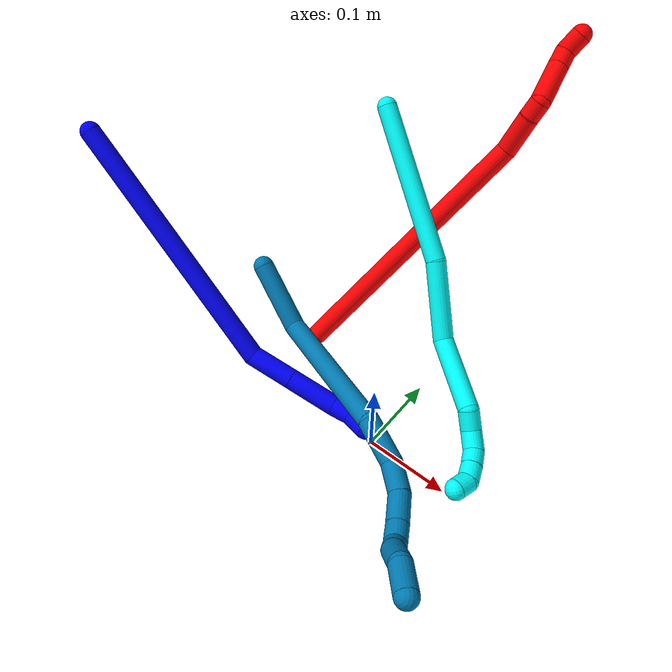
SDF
<sdf version="1.7">
 <world name="default">
  <model name="1">
   <static>0</static>
   <link name="1">
    <collision name="collision-cylinder-e_1_1_4">
     <pose>0.107874 -0.072857 -0.104615 2.53327 0.702266 1.72459</pose>
     <geometry><cylinder><radius>0.0125</radius><length>0.334</length></cylinder></geometry>
     <surface>
      <friction><ode><mu>1.16</mu><mu2>1.16</mu2><slip1>0</slip1><slip2>0</slip2></ode></friction>
      <contact><ode><kp>1e+06</kp><kd>1</kd><max_vel>0</max_vel><min_depth>0.001</min_depth></ode></contact>
     </surface>
    </collision>
    <visual name="visual-cylinder-e_1_1_4">
     <pose>0.107874 -0.072857 -0.104615 2.53327 0.702266 1.72459</pose>
     <geometry><cylinder><radius>0.0125</radius><length>0.334</length></cylinder></geometry>
     <material><ambient>0 0 1 1</ambient></material>
    </visual>
    <collision name="collision-cylinder-e_2_4_5">
     <pose>0.224241 -0.152194 -0.235324 2.89818 0.305962 1.80037</pose>
     <geometry><cylinder><radius>0.0125</radius><length>0.056395</length></cylinder></geometry>
     <surface>
      <friction><ode><mu>1.16</mu><mu2>1.16</mu2><slip1>0</slip1><slip2>0</slip2></ode></friction>
      <contact><ode><kp>1e+06</kp><kd>1</kd><max_vel>0</max_vel><min_depth>0.001</min_depth></ode></contact>
     </surface>
    </collision>
    <visual name="visual-cylinder-e_2_4_5">
     <pose>0.224241 -0.152194 -0.235324 2.89818 0.305962 1.80037</pose>
     <geometry><cylinder><radius>0.0125</radius><length>0.056395</length></cylinder></geometry>
     <material><ambient>0 0 1 1</ambient></material>
    </visual>
    <collision name="collision-cylinder-e_3_5_6">
     <pose>0.242008 -0.166194 -0.289525 2.88016 0.30858 1.73808</pose>
     <geometry><cylinder><radius>0.0125</radius><length>0.061073</length></cylinder></geometry>
     <surface>
      <friction><ode><mu>1.16</mu><mu2>1.16</mu2><slip1>0</slip1><slip2>0</slip2></ode></friction>
      <contact><ode><kp>1e+06</kp><kd>1</kd><max_vel>0</max_vel><min_depth>0.001</min_depth></ode></contact>
     </surface>
    </collision>
    <visual name="visual-cylinder-e_3_5_6">
     <pose>0.242008 -0.166194 -0.289525 2.88016 0.30858 1.73808</pose>
     <geometry><cylinder><radius>0.0125</radius><length>0.061073</length></cylinder></geometry>
     <material><ambient>0 0 1 1</ambient></material>
    </visual>
    <collision name="collision-cylinder-e_4_6_7">
     <pose>0.253886 -0.174894 -0.329008 3.03824 0.223787 2.27879</pose>
     <geometry><cylinder><radius>0.0125</radius><length>0.023461</length></cylinder></geometry>
     <surface>
      <friction><ode><mu>1.16</mu><mu2>1.16</mu2><slip1>0</slip1><slip2>0</slip2></ode></friction>
      <contact><ode><kp>1e+06</kp><kd>1</kd><max_vel>0</max_vel><min_depth>0.001</min_depth></ode></contact>
     </surface>
    </collision>
    <visual name="visual-cylinder-e_4_6_7">
     <pose>0.253886 -0.174894 -0.329008 3.03824 0.223787 2.27879</pose>
     <geometry><cylinder><radius>0.0125</radius><length>0.023461</length></cylinder></geometry>
     <material><ambient>0 0 1 1</ambient></material>
    </visual>
    <collision name="collision-cylinder-e_5_7_2">
     <pose>0.26238 -0.175393 -0.351429 -3.07998 0.48922 -2.89591</pose>
     <geometry><cylinder><radius>0.0125</radius><length>0.025071</length></cylinder></geometry>
     <surface>
      <friction><ode><mu>1.16</mu><mu2>1.16</mu2><slip1>0</slip1><slip2>0</slip2></ode></friction>
      <contact><ode><kp>1e+06</kp><kd>1</kd><max_vel>0</max_vel><min_depth>0.001</min_depth></ode></contact>
     </surface>
    </collision>
    <visual name="visual-cylinder-e_5_7_2">
     <pose>0.26238 -0.175393 -0.351429 -3.07998 0.48922 -2.89591</pose>
     <geometry><cylinder><radius>0.0125</radius><length>0.025071</length></cylinder></geometry>
     <material><ambient>0 0 1 1</ambient></material>
    </visual>
    <collision name="collision-sphere-2">
     <pose>0.268271 -0.174711 -0.362473 0 -0 0</pose>
     <geometry><sphere><radius>0.0125</radius></sphere></geometry>
     <surface>
      <friction><ode><mu>1.16</mu><mu2>1.16</mu2><slip1>0</slip1><slip2>0</slip2></ode></friction>
      <contact><ode><kp>1e+06</kp><kd>1</kd><max_vel>0</max_vel><min_depth>0.001</min_depth></ode></contact>
     </surface>
    </collision>
    <visual name="visual-sphere-2">
     <pose>0.268271 -0.174711 -0.362473 0 -0 0</pose>
     <geometry><sphere><radius>0.0125</radius></sphere></geometry>
     <material><ambient>0 0 1 1</ambient></material>
    </visual>
    <collision name="collision-sphere-7">
     <pose>0.256489 -0.176074 -0.340385 0 -0 0</pose>
     <geometry><sphere><radius>0.0125</radius></sphere></geometry>
     <surface>
      <friction><ode><mu>1.16</mu><mu2>1.16</mu2><slip1>0</slip1><slip2>0</slip2></ode></friction>
      <contact><ode><kp>1e+06</kp><kd>1</kd><max_vel>0</max_vel><min_depth>0.001</min_depth></ode></contact>
     </surface>
    </collision>
    <visual name="visual-sphere-7">
     <pose>0.256489 -0.176074 -0.340385 0 -0 0</pose>
     <geometry><sphere><radius>0.0125</radius></sphere></geometry>
     <material><ambient>0 0 1 1</ambient></material>
    </visual>
    <collision name="collision-sphere-6">
     <pose>0.251282 -0.173714 -0.317631 0 -0 0</pose>
     <geometry><sphere><radius>0.0125</radius></sphere></geometry>
     <surface>
      <friction><ode><mu>1.16</mu><mu2>1.16</mu2><slip1>0</slip1><slip2>0</slip2></ode></friction>
      <contact><ode><kp>1e+06</kp><kd>1</kd><max_vel>0</max_vel><min_depth>0.001</min_depth></ode></contact>
     </surface>
    </collision>
    <visual name="visual-sphere-6">
     <pose>0.251282 -0.173714 -0.317631 0 -0 0</pose>
     <geometry><sphere><radius>0.0125</radius></sphere></geometry>
     <material><ambient>0 0 1 1</ambient></material>
    </visual>
    <collision name="collision-sphere-5">
     <pose>0.232734 -0.158674 -0.261419 0 -0 0</pose>
     <geometry><sphere><radius>0.0125</radius></sphere></geometry>
     <surface>
      <friction><ode><mu>1.16</mu><mu2>1.16</mu2><slip1>0</slip1><slip2>0</slip2></ode></friction>
      <contact><ode><kp>1e+06</kp><kd>1</kd><max_vel>0</max_vel><min_depth>0.001</min_depth></ode></contact>
     </surface>
    </collision>
    <visual name="visual-sphere-5">
     <pose>0.232734 -0.158674 -0.261419 0 -0 0</pose>
     <geometry><sphere><radius>0.0125</radius></sphere></geometry>
     <material><ambient>0 0 1 1</ambient></material>
    </visual>
    <collision name="collision-sphere-1">
     <geometry><sphere><radius>0.0125</radius></sphere></geometry>
     <surface>
      <friction><ode><mu>1.16</mu><mu2>1.16</mu2><slip1>0</slip1><slip2>0</slip2></ode></friction>
      <contact><ode><kp>1e+06</kp><kd>1</kd><max_vel>0</max_vel><min_depth>0.001</min_depth></ode></contact>
     </surface>
    </collision>
    <visual name="visual-sphere-1">
     <geometry><sphere><radius>0.0125</radius></sphere></geometry>
     <material><ambient>0 0 1 1</ambient></material>
    </visual>
    <collision name="collision-sphere-4">
     <pose>0.215747 -0.145714 -0.209229 0 -0 0</pose>
     <geometry><sphere><radius>0.0125</radius></sphere></geometry>
     <surface>
      <friction><ode><mu>1.16</mu><mu2>1.16</mu2><slip1>0</slip1><slip2>0</slip2></ode></friction>
      <contact><ode><kp>1e+06</kp><kd>1</kd><max_vel>0</max_vel><min_depth>0.001</min_depth></ode></contact>
     </surface>
    </collision>
    <visual name="visual-sphere-4">
     <pose>0.215747 -0.145714 -0.209229 0 -0 0</pose>
     <geometry><sphere><radius>0.0125</radius></sphere></geometry>
     <material><ambient>0 0 1 1</ambient></material>
    </visual>
    <inertial>
     <pose>0.151981 -0.103135 -0.164848 0 -0 0</pose>
     <mass>0.5</mass>
     <inertia>
      <ixx>0.002035</ixx>
      <ixy>0</ixy>
      <ixz>0</ixz>
      <iyy>0.003919</iyy>
      <iyz>0</iyz>
      <izz>-0.000686</izz>
     </inertia>
    </inertial>
   </link>
   <pose>-0.436874 0.00221 0.243418 1.79302 0.634537 -1.17367</pose>
  </model>
  <model name="2">
   <static>0</static>
   <link name="2">
    <collision name="collision-cylinder-e_1_1_4">
     <pose>0.003583 0.130474 0.103055 -0.902274 0.021548 -0.010439</pose>
     <geometry><cylinder><radius>0.0125</radius><length>0.332605</length></cylinder></geometry>
     <surface>
      <friction><ode><mu>1.16</mu><mu2>1.16</mu2><slip1>0</slip1><slip2>0</slip2></ode></friction>
      <contact><ode><kp>1e+06</kp><kd>1</kd><max_vel>0</max_vel><min_depth>0.001</min_depth></ode></contact>
     </surface>
    </collision>
    <visual name="visual-cylinder-e_1_1_4">
     <pose>0.003583 0.130474 0.103055 -0.902274 0.021548 -0.010439</pose>
     <geometry><cylinder><radius>0.0125</radius><length>0.332605</length></cylinder></geometry>
     <material><ambient>1 0 0 1</ambient></material>
    </visual>
    <collision name="collision-cylinder-e_2_4_5">
     <pose>0.00754 0.271974 0.227628 -0.473535 0.015443 -0.003726</pose>
     <geometry><cylinder><radius>0.0125</radius><length>0.048364</length></cylinder></geometry>
     <surface>
      <friction><ode><mu>1.16</mu><mu2>1.16</mu2><slip1>0</slip1><slip2>0</slip2></ode></friction>
      <contact><ode><kp>1e+06</kp><kd>1</kd><max_vel>0</max_vel><min_depth>0.001</min_depth></ode></contact>
     </surface>
    </collision>
    <visual name="visual-cylinder-e_2_4_5">
     <pose>0.00754 0.271974 0.227628 -0.473535 0.015443 -0.003726</pose>
     <geometry><cylinder><radius>0.0125</radius><length>0.048364</length></cylinder></geometry>
     <material><ambient>1 0 0 1</ambient></material>
    </visual>
    <collision name="collision-cylinder-e_3_5_6">
     <pose>0.007796 0.289076 0.258225 -0.58979 -0.010752 0.003266</pose>
     <geometry><cylinder><radius>0.0125</radius><length>0.021849</length></cylinder></geometry>
     <surface>
      <friction><ode><mu>1.16</mu><mu2>1.16</mu2><slip1>0</slip1><slip2>0</slip2></ode></friction>
      <contact><ode><kp>1e+06</kp><kd>1</kd><max_vel>0</max_vel><min_depth>0.001</min_depth></ode></contact>
     </surface>
    </collision>
    <visual name="visual-cylinder-e_3_5_6">
     <pose>0.007796 0.289076 0.258225 -0.58979 -0.010752 0.003266</pose>
     <geometry><cylinder><radius>0.0125</radius><length>0.021849</length></cylinder></geometry>
     <material><ambient>1 0 0 1</ambient></material>
    </visual>
    <collision name="collision-cylinder-e_4_6_7">
     <pose>-0.003567 0.316411 0.27575 -1.1926 -0.456906 0.313038</pose>
     <geometry><cylinder><radius>0.0125</radius><length>0.05098</length></cylinder></geometry>
     <surface>
      <friction><ode><mu>1.16</mu><mu2>1.16</mu2><slip1>0</slip1><slip2>0</slip2></ode></friction>
      <contact><ode><kp>1e+06</kp><kd>1</kd><max_vel>0</max_vel><min_depth>0.001</min_depth></ode></contact>
     </surface>
    </collision>
    <visual name="visual-cylinder-e_4_6_7">
     <pose>-0.003567 0.316411 0.27575 -1.1926 -0.456906 0.313038</pose>
     <geometry><cylinder><radius>0.0125</radius><length>0.05098</length></cylinder></geometry>
     <material><ambient>1 0 0 1</ambient></material>
    </visual>
    <collision name="collision-cylinder-e_5_7_8">
     <pose>-0.01914 0.346297 0.288459 -1.112 -0.422575 0.265001</pose>
     <geometry><cylinder><radius>0.0125</radius><length>0.021102</length></cylinder></geometry>
     <surface>
      <friction><ode><mu>1.16</mu><mu2>1.16</mu2><slip1>0</slip1><slip2>0</slip2></ode></friction>
      <contact><ode><kp>1e+06</kp><kd>1</kd><max_vel>0</max_vel><min_depth>0.001</min_depth></ode></contact>
     </surface>
    </collision>
    <visual name="visual-cylinder-e_5_7_8">
     <pose>-0.01914 0.346297 0.288459 -1.112 -0.422575 0.265001</pose>
     <geometry><cylinder><radius>0.0125</radius><length>0.021102</length></cylinder></geometry>
     <material><ambient>1 0 0 1</ambient></material>
    </visual>
    <collision name="collision-cylinder-e_6_8_2">
     <pose>-0.022767 0.363453 0.301901 -0.748544 0.055821 -0.021931</pose>
     <geometry><cylinder><radius>0.0125</radius><length>0.025099</length></cylinder></geometry>
     <surface>
      <friction><ode><mu>1.16</mu><mu2>1.16</mu2><slip1>0</slip1><slip2>0</slip2></ode></friction>
      <contact><ode><kp>1e+06</kp><kd>1</kd><max_vel>0</max_vel><min_depth>0.001</min_depth></ode></contact>
     </surface>
    </collision>
    <visual name="visual-cylinder-e_6_8_2">
     <pose>-0.022767 0.363453 0.301901 -0.748544 0.055821 -0.021931</pose>
     <geometry><cylinder><radius>0.0125</radius><length>0.025099</length></cylinder></geometry>
     <material><ambient>1 0 0 1</ambient></material>
    </visual>
    <collision name="collision-sphere-2">
     <pose>-0.022067 0.37198 0.311082 0 -0 0</pose>
     <geometry><sphere><radius>0.0125</radius></sphere></geometry>
     <surface>
      <friction><ode><mu>1.16</mu><mu2>1.16</mu2><slip1>0</slip1><slip2>0</slip2></ode></friction>
      <contact><ode><kp>1e+06</kp><kd>1</kd><max_vel>0</max_vel><min_depth>0.001</min_depth></ode></contact>
     </surface>
    </collision>
    <visual name="visual-sphere-2">
     <pose>-0.022067 0.37198 0.311082 0 -0 0</pose>
     <geometry><sphere><radius>0.0125</radius></sphere></geometry>
     <material><ambient>1 0 0 1</ambient></material>
    </visual>
    <collision name="collision-sphere-4">
     <pose>0.007166 0.260947 0.20611 0 -0 0</pose>
     <geometry><sphere><radius>0.0125</radius></sphere></geometry>
     <surface>
      <friction><ode><mu>1.16</mu><mu2>1.16</mu2><slip1>0</slip1><slip2>0</slip2></ode></friction>
      <contact><ode><kp>1e+06</kp><kd>1</kd><max_vel>0</max_vel><min_depth>0.001</min_depth></ode></contact>
     </surface>
    </collision>
    <visual name="visual-sphere-4">
     <pose>0.007166 0.260947 0.20611 0 -0 0</pose>
     <geometry><sphere><radius>0.0125</radius></sphere></geometry>
     <material><ambient>1 0 0 1</ambient></material>
    </visual>
    <collision name="collision-sphere-1">
     <geometry><sphere><radius>0.0125</radius></sphere></geometry>
     <surface>
      <friction><ode><mu>1.16</mu><mu2>1.16</mu2><slip1>0</slip1><slip2>0</slip2></ode></friction>
      <contact><ode><kp>1e+06</kp><kd>1</kd><max_vel>0</max_vel><min_depth>0.001</min_depth></ode></contact>
     </surface>
    </collision>
    <visual name="visual-sphere-1">
     <geometry><sphere><radius>0.0125</radius></sphere></geometry>
     <material><ambient>1 0 0 1</ambient></material>
    </visual>
    <collision name="collision-sphere-8">
     <pose>-0.023467 0.354925 0.292721 0 -0 0</pose>
     <geometry><sphere><radius>0.0125</radius></sphere></geometry>
     <surface>
      <friction><ode><mu>1.16</mu><mu2>1.16</mu2><slip1>0</slip1><slip2>0</slip2></ode></friction>
      <contact><ode><kp>1e+06</kp><kd>1</kd><max_vel>0</max_vel><min_depth>0.001</min_depth></ode></contact>
     </surface>
    </collision>
    <visual name="visual-sphere-8">
     <pose>-0.023467 0.354925 0.292721 0 -0 0</pose>
     <geometry><sphere><radius>0.0125</radius></sphere></geometry>
     <material><ambient>1 0 0 1</ambient></material>
    </visual>
    <collision name="collision-sphere-5">
     <pose>0.007913 0.283 0.249147 0 -0 0</pose>
     <geometry><sphere><radius>0.0125</radius></sphere></geometry>
     <surface>
      <friction><ode><mu>1.16</mu><mu2>1.16</mu2><slip1>0</slip1><slip2>0</slip2></ode></friction>
      <contact><ode><kp>1e+06</kp><kd>1</kd><max_vel>0</max_vel><min_depth>0.001</min_depth></ode></contact>
     </surface>
    </collision>
    <visual name="visual-sphere-5">
     <pose>0.007913 0.283 0.249147 0 -0 0</pose>
     <geometry><sphere><radius>0.0125</radius></sphere></geometry>
     <material><ambient>1 0 0 1</ambient></material>
    </visual>
    <collision name="collision-sphere-6">
     <pose>0.007678 0.295152 0.267304 0 -0 0</pose>
     <geometry><sphere><radius>0.0125</radius></sphere></geometry>
     <surface>
      <friction><ode><mu>1.16</mu><mu2>1.16</mu2><slip1>0</slip1><slip2>0</slip2></ode></friction>
      <contact><ode><kp>1e+06</kp><kd>1</kd><max_vel>0</max_vel><min_depth>0.001</min_depth></ode></contact>
     </surface>
    </collision>
    <visual name="visual-sphere-6">
     <pose>0.007678 0.295152 0.267304 0 -0 0</pose>
     <geometry><sphere><radius>0.0125</radius></sphere></geometry>
     <material><ambient>1 0 0 1</ambient></material>
    </visual>
    <collision name="collision-sphere-7">
     <pose>-0.014813 0.337669 0.284197 0 -0 0</pose>
     <geometry><sphere><radius>0.0125</radius></sphere></geometry>
     <surface>
      <friction><ode><mu>1.16</mu><mu2>1.16</mu2><slip1>0</slip1><slip2>0</slip2></ode></friction>
      <contact><ode><kp>1e+06</kp><kd>1</kd><max_vel>0</max_vel><min_depth>0.001</min_depth></ode></contact>
     </surface>
    </collision>
    <visual name="visual-sphere-7">
     <pose>-0.014813 0.337669 0.284197 0 -0 0</pose>
     <geometry><sphere><radius>0.0125</radius></sphere></geometry>
     <material><ambient>1 0 0 1</ambient></material>
    </visual>
    <inertial>
     <pose>0.001139 0.190854 0.1573 0 -0 0</pose>
     <mass>0.5</mass>
     <inertia>
      <ixx>0.003076</ixx>
      <ixy>0</ixy>
      <ixz>0</ixz>
      <iyy>0.00193</iyy>
      <iyz>0</iyz>
      <izz>-0.002472</izz>
     </inertia>
    </inertial>
   </link>
   <pose>-0.148547 0.078013 0.011489 0.03948 0.131159 -0.288222</pose>
  </model>
  <model name="3">
   <static>0</static>
   <link name="3">
    <collision name="collision-cylinder-e_1_1_4">
     <pose>0.002268 0.009738 -0.099819 -3.04434 0.022611 -0.456572</pose>
     <geometry><cylinder><radius>0.0125</radius><length>0.200637</length></cylinder></geometry>
     <surface>
      <friction><ode><mu>1.16</mu><mu2>1.16</mu2><slip1>0</slip1><slip2>0</slip2></ode></friction>
      <contact><ode><kp>1e+06</kp><kd>1</kd><max_vel>0</max_vel><min_depth>0.001</min_depth></ode></contact>
     </surface>
    </collision>
    <visual name="visual-cylinder-e_1_1_4">
     <pose>0.002268 0.009738 -0.099819 -3.04434 0.022611 -0.456572</pose>
     <geometry><cylinder><radius>0.0125</radius><length>0.200637</length></cylinder></geometry>
     <material><ambient>0.003922 1 0.996078 1</ambient></material>
    </visual>
    <collision name="collision-cylinder-e_2_4_5">
     <pose>-0.004751 0.016873 -0.24741 3.08716 -0.191745 -2.58984</pose>
     <geometry><cylinder><radius>0.0125</radius><length>0.097472</length></cylinder></geometry>
     <surface>
      <friction><ode><mu>1.16</mu><mu2>1.16</mu2><slip1>0</slip1><slip2>0</slip2></ode></friction>
      <contact><ode><kp>1e+06</kp><kd>1</kd><max_vel>0</max_vel><min_depth>0.001</min_depth></ode></contact>
     </surface>
    </collision>
    <visual name="visual-cylinder-e_2_4_5">
     <pose>-0.004751 0.016873 -0.24741 3.08716 -0.191745 -2.58984</pose>
     <geometry><cylinder><radius>0.0125</radius><length>0.097472</length></cylinder></geometry>
     <material><ambient>0.003922 1 0.996078 1</ambient></material>
    </visual>
    <collision name="collision-cylinder-e_3_5_6">
     <pose>0.005558 0.0148 -0.337004 -3.12892 0.438164 -3.08469</pose>
     <geometry><cylinder><radius>0.0125</radius><length>0.092377</length></cylinder></geometry>
     <surface>
      <friction><ode><mu>1.16</mu><mu2>1.16</mu2><slip1>0</slip1><slip2>0</slip2></ode></friction>
      <contact><ode><kp>1e+06</kp><kd>1</kd><max_vel>0</max_vel><min_depth>0.001</min_depth></ode></contact>
     </surface>
    </collision>
    <visual name="visual-cylinder-e_3_5_6">
     <pose>0.005558 0.0148 -0.337004 -3.12892 0.438164 -3.08469</pose>
     <geometry><cylinder><radius>0.0125</radius><length>0.092377</length></cylinder></geometry>
     <material><ambient>0.003922 1 0.996078 1</ambient></material>
    </visual>
    <collision name="collision-cylinder-e_4_6_7">
     <pose>0.022651 0.015088 -0.391015 3.12176 -0.202574 -2.9471</pose>
     <geometry><cylinder><radius>0.0125</radius><length>0.024891</length></cylinder></geometry>
     <surface>
      <friction><ode><mu>1.16</mu><mu2>1.16</mu2><slip1>0</slip1><slip2>0</slip2></ode></friction>
      <contact><ode><kp>1e+06</kp><kd>1</kd><max_vel>0</max_vel><min_depth>0.001</min_depth></ode></contact>
     </surface>
    </collision>
    <visual name="visual-cylinder-e_4_6_7">
     <pose>0.022651 0.015088 -0.391015 3.12176 -0.202574 -2.9471</pose>
     <geometry><cylinder><radius>0.0125</radius><length>0.024891</length></cylinder></geometry>
     <material><ambient>0.003922 1 0.996078 1</ambient></material>
    </visual>
    <collision name="collision-cylinder-e_5_7_8">
     <pose>0.022637 0.013073 -0.415116 2.99387 0.203869 1.88909</pose>
     <geometry><cylinder><radius>0.0125</radius><length>0.024598</length></cylinder></geometry>
     <surface>
      <friction><ode><mu>1.16</mu><mu2>1.16</mu2><slip1>0</slip1><slip2>0</slip2></ode></friction>
      <contact><ode><kp>1e+06</kp><kd>1</kd><max_vel>0</max_vel><min_depth>0.001</min_depth></ode></contact>
     </surface>
    </collision>
    <visual name="visual-cylinder-e_5_7_8">
     <pose>0.022637 0.013073 -0.415116 2.99387 0.203869 1.88909</pose>
     <geometry><cylinder><radius>0.0125</radius><length>0.024598</length></cylinder></geometry>
     <material><ambient>0.003922 1 0.996078 1</ambient></material>
    </visual>
    <collision name="collision-cylinder-e_6_8_9">
     <pose>0.030512 0.006599 -0.434037 2.55065 0.568019 1.52895</pose>
     <geometry><cylinder><radius>0.0125</radius><length>0.02002</length></cylinder></geometry>
     <surface>
      <friction><ode><mu>1.16</mu><mu2>1.16</mu2><slip1>0</slip1><slip2>0</slip2></ode></friction>
      <contact><ode><kp>1e+06</kp><kd>1</kd><max_vel>0</max_vel><min_depth>0.001</min_depth></ode></contact>
     </surface>
    </collision>
    <visual name="visual-cylinder-e_6_8_9">
     <pose>0.030512 0.006599 -0.434037 2.55065 0.568019 1.52895</pose>
     <geometry><cylinder><radius>0.0125</radius><length>0.02002</length></cylinder></geometry>
     <material><ambient>0.003922 1 0.996078 1</ambient></material>
    </visual>
    <collision name="collision-cylinder-e_7_9_10">
     <pose>0.040877 -0.003513 -0.447821 2.46775 0.521295 1.30156</pose>
     <geometry><cylinder><radius>0.0125</radius><length>0.02</length></cylinder></geometry>
     <surface>
      <friction><ode><mu>1.16</mu><mu2>1.16</mu2><slip1>0</slip1><slip2>0</slip2></ode></friction>
      <contact><ode><kp>1e+06</kp><kd>1</kd><max_vel>0</max_vel><min_depth>0.001</min_depth></ode></contact>
     </surface>
    </collision>
    <visual name="visual-cylinder-e_7_9_10">
     <pose>0.040877 -0.003513 -0.447821 2.46775 0.521295 1.30156</pose>
     <geometry><cylinder><radius>0.0125</radius><length>0.02</length></cylinder></geometry>
     <material><ambient>0.003922 1 0.996078 1</ambient></material>
    </visual>
    <collision name="collision-cylinder-e_8_10_2">
     <pose>0.049939 -0.017833 -0.456601 1.79201 0.420338 0.521119</pose>
     <geometry><cylinder><radius>0.0125</radius><length>0.020004</length></cylinder></geometry>
     <surface>
      <friction><ode><mu>1.16</mu><mu2>1.16</mu2><slip1>0</slip1><slip2>0</slip2></ode></friction>
      <contact><ode><kp>1e+06</kp><kd>1</kd><max_vel>0</max_vel><min_depth>0.001</min_depth></ode></contact>
     </surface>
    </collision>
    <visual name="visual-cylinder-e_8_10_2">
     <pose>0.049939 -0.017833 -0.456601 1.79201 0.420338 0.521119</pose>
     <geometry><cylinder><radius>0.0125</radius><length>0.020004</length></cylinder></geometry>
     <material><ambient>0.003922 1 0.996078 1</ambient></material>
    </visual>
    <collision name="collision-sphere-2">
     <pose>0.05402 -0.026742 -0.458604 0 -0 0</pose>
     <geometry><sphere><radius>0.0125</radius></sphere></geometry>
     <surface>
      <friction><ode><mu>1.16</mu><mu2>1.16</mu2><slip1>0</slip1><slip2>0</slip2></ode></friction>
      <contact><ode><kp>1e+06</kp><kd>1</kd><max_vel>0</max_vel><min_depth>0.001</min_depth></ode></contact>
     </surface>
    </collision>
    <visual name="visual-sphere-2">
     <pose>0.05402 -0.026742 -0.458604 0 -0 0</pose>
     <geometry><sphere><radius>0.0125</radius></sphere></geometry>
     <material><ambient>0.003922 1 0.996078 1</ambient></material>
    </visual>
    <collision name="collision-sphere-10">
     <pose>0.045857 -0.008924 -0.454597 0 -0 0</pose>
     <geometry><sphere><radius>0.0125</radius></sphere></geometry>
     <surface>
      <friction><ode><mu>1.16</mu><mu2>1.16</mu2><slip1>0</slip1><slip2>0</slip2></ode></friction>
      <contact><ode><kp>1e+06</kp><kd>1</kd><max_vel>0</max_vel><min_depth>0.001</min_depth></ode></contact>
     </surface>
    </collision>
    <visual name="visual-sphere-10">
     <pose>0.045857 -0.008924 -0.454597 0 -0 0</pose>
     <geometry><sphere><radius>0.0125</radius></sphere></geometry>
     <material><ambient>0.003922 1 0.996078 1</ambient></material>
    </visual>
    <collision name="collision-sphere-9">
     <pose>0.035897 0.001898 -0.441044 0 -0 0</pose>
     <geometry><sphere><radius>0.0125</radius></sphere></geometry>
     <surface>
      <friction><ode><mu>1.16</mu><mu2>1.16</mu2><slip1>0</slip1><slip2>0</slip2></ode></friction>
      <contact><ode><kp>1e+06</kp><kd>1</kd><max_vel>0</max_vel><min_depth>0.001</min_depth></ode></contact>
     </surface>
    </collision>
    <visual name="visual-sphere-9">
     <pose>0.035897 0.001898 -0.441044 0 -0 0</pose>
     <geometry><sphere><radius>0.0125</radius></sphere></geometry>
     <material><ambient>0.003922 1 0.996078 1</ambient></material>
    </visual>
    <collision name="collision-sphere-4">
     <pose>0.004536 0.019476 -0.199638 0 -0 0</pose>
     <geometry><sphere><radius>0.0125</radius></sphere></geometry>
     <surface>
      <friction><ode><mu>1.16</mu><mu2>1.16</mu2><slip1>0</slip1><slip2>0</slip2></ode></friction>
      <contact><ode><kp>1e+06</kp><kd>1</kd><max_vel>0</max_vel><min_depth>0.001</min_depth></ode></contact>
     </surface>
    </collision>
    <visual name="visual-sphere-4">
     <pose>0.004536 0.019476 -0.199638 0 -0 0</pose>
     <geometry><sphere><radius>0.0125</radius></sphere></geometry>
     <material><ambient>0.003922 1 0.996078 1</ambient></material>
    </visual>
    <collision name="collision-sphere-1">
     <geometry><sphere><radius>0.0125</radius></sphere></geometry>
     <surface>
      <friction><ode><mu>1.16</mu><mu2>1.16</mu2><slip1>0</slip1><slip2>0</slip2></ode></friction>
      <contact><ode><kp>1e+06</kp><kd>1</kd><max_vel>0</max_vel><min_depth>0.001</min_depth></ode></contact>
     </surface>
    </collision>
    <visual name="visual-sphere-1">
     <geometry><sphere><radius>0.0125</radius></sphere></geometry>
     <material><ambient>0.003922 1 0.996078 1</ambient></material>
    </visual>
    <collision name="collision-sphere-8">
     <pose>0.025127 0.011301 -0.42703 0 -0 0</pose>
     <geometry><sphere><radius>0.0125</radius></sphere></geometry>
     <surface>
      <friction><ode><mu>1.16</mu><mu2>1.16</mu2><slip1>0</slip1><slip2>0</slip2></ode></friction>
      <contact><ode><kp>1e+06</kp><kd>1</kd><max_vel>0</max_vel><min_depth>0.001</min_depth></ode></contact>
     </surface>
    </collision>
    <visual name="visual-sphere-8">
     <pose>0.025127 0.011301 -0.42703 0 -0 0</pose>
     <geometry><sphere><radius>0.0125</radius></sphere></geometry>
     <material><ambient>0.003922 1 0.996078 1</ambient></material>
    </visual>
    <collision name="collision-sphere-5">
     <pose>-0.014039 0.01427 -0.295182 0 -0 0</pose>
     <geometry><sphere><radius>0.0125</radius></sphere></geometry>
     <surface>
      <friction><ode><mu>1.16</mu><mu2>1.16</mu2><slip1>0</slip1><slip2>0</slip2></ode></friction>
      <contact><ode><kp>1e+06</kp><kd>1</kd><max_vel>0</max_vel><min_depth>0.001</min_depth></ode></contact>
     </surface>
    </collision>
    <visual name="visual-sphere-5">
     <pose>-0.014039 0.01427 -0.295182 0 -0 0</pose>
     <geometry><sphere><radius>0.0125</radius></sphere></geometry>
     <material><ambient>0.003922 1 0.996078 1</ambient></material>
    </visual>
    <collision name="collision-sphere-6">
     <pose>0.025154 0.01533 -0.378826 0 -0 0</pose>
     <geometry><sphere><radius>0.0125</radius></sphere></geometry>
     <surface>
      <friction><ode><mu>1.16</mu><mu2>1.16</mu2><slip1>0</slip1><slip2>0</slip2></ode></friction>
      <contact><ode><kp>1e+06</kp><kd>1</kd><max_vel>0</max_vel><min_depth>0.001</min_depth></ode></contact>
     </surface>
    </collision>
    <visual name="visual-sphere-6">
     <pose>0.025154 0.01533 -0.378826 0 -0 0</pose>
     <geometry><sphere><radius>0.0125</radius></sphere></geometry>
     <material><ambient>0.003922 1 0.996078 1</ambient></material>
    </visual>
    <collision name="collision-sphere-7">
     <pose>0.020147 0.014846 -0.403203 0 -0 0</pose>
     <geometry><sphere><radius>0.0125</radius></sphere></geometry>
     <surface>
      <friction><ode><mu>1.16</mu><mu2>1.16</mu2><slip1>0</slip1><slip2>0</slip2></ode></friction>
      <contact><ode><kp>1e+06</kp><kd>1</kd><max_vel>0</max_vel><min_depth>0.001</min_depth></ode></contact>
     </surface>
    </collision>
    <visual name="visual-sphere-7">
     <pose>0.020147 0.014846 -0.403203 0 -0 0</pose>
     <geometry><sphere><radius>0.0125</radius></sphere></geometry>
     <material><ambient>0.003922 1 0.996078 1</ambient></material>
    </visual>
    <inertial>
     <pose>0.008107 0.010736 -0.243996 0 -0 0</pose>
     <mass>0.5</mass>
     <inertia>
      <ixx>0.000143</ixx>
      <ixy>0</ixy>
      <ixz>0</ixz>
      <iyy>-0.000808</iyy>
      <iyz>0</iyz>
      <izz>-0.000127</izz>
     </inertia>
    </inertial>
   </link>
   <pose>-0.189688 0.265626 0.246283 -0.009462 -0.933992 -0.634094</pose>
  </model>
  <model name="9">
   <static>0</static>
   <link name="9">
    <collision name="collision-cylinder-e_1_1_4">
     <pose>0.02162 -0.026363 -0.025687 2.3432 0.53108 1.14527</pose>
     <geometry><cylinder><radius>0.0125</radius><length>0.085375</length></cylinder></geometry>
     <surface>
      <friction><ode><mu>1.16</mu><mu2>1.16</mu2><slip1>0</slip1><slip2>0</slip2></ode></friction>
      <contact><ode><kp>1e+06</kp><kd>1</kd><max_vel>0</max_vel><min_depth>0.001</min_depth></ode></contact>
     </surface>
    </collision>
    <visual name="visual-cylinder-e_1_1_4">
     <pose>0.02162 -0.026363 -0.025687 2.3432 0.53108 1.14527</pose>
     <geometry><cylinder><radius>0.0125</radius><length>0.085375</length></cylinder></geometry>
     <material><ambient>0 0.490196 0.709804 1</ambient></material>
    </visual>
    <collision name="collision-cylinder-e_2_4_5">
     <pose>0.126443 -0.078129 -0.063635 2.0205 1.24394 1.70324</pose>
     <geometry><cylinder><radius>0.0125</radius><length>0.17571</length></cylinder></geometry>
     <surface>
      <friction><ode><mu>1.16</mu><mu2>1.16</mu2><slip1>0</slip1><slip2>0</slip2></ode></friction>
      <contact><ode><kp>1e+06</kp><kd>1</kd><max_vel>0</max_vel><min_depth>0.001</min_depth></ode></contact>
     </surface>
    </collision>
    <visual name="visual-cylinder-e_2_4_5">
     <pose>0.126443 -0.078129 -0.063635 2.0205 1.24394 1.70324</pose>
     <geometry><cylinder><radius>0.0125</radius><length>0.17571</length></cylinder></geometry>
     <material><ambient>0 0.490196 0.709804 1</ambient></material>
    </visual>
    <collision name="collision-cylinder-e_3_5_6">
     <pose>0.230053 -0.117502 -0.085178 2.15722 0.882866 1.44473</pose>
     <geometry><cylinder><radius>0.0125</radius><length>0.052827</length></cylinder></geometry>
     <surface>
      <friction><ode><mu>1.16</mu><mu2>1.16</mu2><slip1>0</slip1><slip2>0</slip2></ode></friction>
      <contact><ode><kp>1e+06</kp><kd>1</kd><max_vel>0</max_vel><min_depth>0.001</min_depth></ode></contact>
     </surface>
    </collision>
    <visual name="visual-cylinder-e_3_5_6">
     <pose>0.230053 -0.117502 -0.085178 2.15722 0.882866 1.44473</pose>
     <geometry><cylinder><radius>0.0125</radius><length>0.052827</length></cylinder></geometry>
     <material><ambient>0 0.490196 0.709804 1</ambient></material>
    </visual>
    <collision name="collision-cylinder-e_4_6_7">
     <pose>0.264114 -0.142681 -0.095374 1.65227 0.881757 0.946331</pose>
     <geometry><cylinder><radius>0.0125</radius><length>0.035382</length></cylinder></geometry>
     <surface>
      <friction><ode><mu>1.16</mu><mu2>1.16</mu2><slip1>0</slip1><slip2>0</slip2></ode></friction>
      <contact><ode><kp>1e+06</kp><kd>1</kd><max_vel>0</max_vel><min_depth>0.001</min_depth></ode></contact>
     </surface>
    </collision>
    <visual name="visual-cylinder-e_4_6_7">
     <pose>0.264114 -0.142681 -0.095374 1.65227 0.881757 0.946331</pose>
     <geometry><cylinder><radius>0.0125</radius><length>0.035382</length></cylinder></geometry>
     <material><ambient>0 0.490196 0.709804 1</ambient></material>
    </visual>
    <collision name="collision-cylinder-e_5_7_8">
     <pose>0.288953 -0.166054 -0.092221 1.24794 0.717197 0.527104</pose>
     <geometry><cylinder><radius>0.0125</radius><length>0.034032</length></cylinder></geometry>
     <surface>
      <friction><ode><mu>1.16</mu><mu2>1.16</mu2><slip1>0</slip1><slip2>0</slip2></ode></friction>
      <contact><ode><kp>1e+06</kp><kd>1</kd><max_vel>0</max_vel><min_depth>0.001</min_depth></ode></contact>
     </surface>
    </collision>
    <visual name="visual-cylinder-e_5_7_8">
     <pose>0.288953 -0.166054 -0.092221 1.24794 0.717197 0.527104</pose>
     <geometry><cylinder><radius>0.0125</radius><length>0.034032</length></cylinder></geometry>
     <material><ambient>0 0.490196 0.709804 1</ambient></material>
    </visual>
    <collision name="collision-cylinder-e_6_8_9">
     <pose>0.308302 -0.185728 -0.08383 1.04867 0.75554 0.451186</pose>
     <geometry><cylinder><radius>0.0125</radius><length>0.023815</length></cylinder></geometry>
     <surface>
      <friction><ode><mu>1.16</mu><mu2>1.16</mu2><slip1>0</slip1><slip2>0</slip2></ode></friction>
      <contact><ode><kp>1e+06</kp><kd>1</kd><max_vel>0</max_vel><min_depth>0.001</min_depth></ode></contact>
     </surface>
    </collision>
    <visual name="visual-cylinder-e_6_8_9">
     <pose>0.308302 -0.185728 -0.08383 1.04867 0.75554 0.451186</pose>
     <geometry><cylinder><radius>0.0125</radius><length>0.023815</length></cylinder></geometry>
     <material><ambient>0 0.490196 0.709804 1</ambient></material>
    </visual>
    <collision name="collision-cylinder-e_7_9_10">
     <pose>0.323609 -0.193168 -0.071995 -0.009662 0.760154 -0.00386</pose>
     <geometry><cylinder><radius>0.0125</radius><length>0.020731</length></cylinder></geometry>
     <surface>
      <friction><ode><mu>1.16</mu><mu2>1.16</mu2><slip1>0</slip1><slip2>0</slip2></ode></friction>
      <contact><ode><kp>1e+06</kp><kd>1</kd><max_vel>0</max_vel><min_depth>0.001</min_depth></ode></contact>
     </surface>
    </collision>
    <visual name="visual-cylinder-e_7_9_10">
     <pose>0.323609 -0.193168 -0.071995 -0.009662 0.760154 -0.00386</pose>
     <geometry><cylinder><radius>0.0125</radius><length>0.020731</length></cylinder></geometry>
     <material><ambient>0 0.490196 0.709804 1</ambient></material>
    </visual>
    <collision name="collision-cylinder-e_8_10_11">
     <pose>0.346743 -0.192144 -0.054909 -0.099056 1.02917 -0.056037</pose>
     <geometry><cylinder><radius>0.0125</radius><length>0.037328</length></cylinder></geometry>
     <surface>
      <friction><ode><mu>1.16</mu><mu2>1.16</mu2><slip1>0</slip1><slip2>0</slip2></ode></friction>
      <contact><ode><kp>1e+06</kp><kd>1</kd><max_vel>0</max_vel><min_depth>0.001</min_depth></ode></contact>
     </surface>
    </collision>
    <visual name="visual-cylinder-e_8_10_11">
     <pose>0.346743 -0.192144 -0.054909 -0.099056 1.02917 -0.056037</pose>
     <geometry><cylinder><radius>0.0125</radius><length>0.037328</length></cylinder></geometry>
     <material><ambient>0 0.490196 0.709804 1</ambient></material>
    </visual>
    <collision name="collision-cylinder-e_9_11_2">
     <pose>0.377686 -0.198754 -0.040636 1.01484 1.03372 0.61217</pose>
     <geometry><cylinder><radius>0.0125</radius><length>0.0348</length></cylinder></geometry>
     <surface>
      <friction><ode><mu>1.16</mu><mu2>1.16</mu2><slip1>0</slip1><slip2>0</slip2></ode></friction>
      <contact><ode><kp>1e+06</kp><kd>1</kd><max_vel>0</max_vel><min_depth>0.001</min_depth></ode></contact>
     </surface>
    </collision>
    <visual name="visual-cylinder-e_9_11_2">
     <pose>0.377686 -0.198754 -0.040636 1.01484 1.03372 0.61217</pose>
     <geometry><cylinder><radius>0.0125</radius><length>0.0348</length></cylinder></geometry>
     <material><ambient>0 0.490196 0.709804 1</ambient></material>
    </visual>
    <collision name="collision-sphere-2">
     <pose>0.392636 -0.206315 -0.035938 0 -0 0</pose>
     <geometry><sphere><radius>0.0125</radius></sphere></geometry>
     <surface>
      <friction><ode><mu>1.16</mu><mu2>1.16</mu2><slip1>0</slip1><slip2>0</slip2></ode></friction>
      <contact><ode><kp>1e+06</kp><kd>1</kd><max_vel>0</max_vel><min_depth>0.001</min_depth></ode></contact>
     </surface>
    </collision>
    <visual name="visual-sphere-2">
     <pose>0.392636 -0.206315 -0.035938 0 -0 0</pose>
     <geometry><sphere><radius>0.0125</radius></sphere></geometry>
     <material><ambient>0 0.490196 0.709804 1</ambient></material>
    </visual>
    <collision name="collision-sphere-11">
     <pose>0.362736 -0.191192 -0.045335 0 -0 0</pose>
     <geometry><sphere><radius>0.0125</radius></sphere></geometry>
     <surface>
      <friction><ode><mu>1.16</mu><mu2>1.16</mu2><slip1>0</slip1><slip2>0</slip2></ode></friction>
      <contact><ode><kp>1e+06</kp><kd>1</kd><max_vel>0</max_vel><min_depth>0.001</min_depth></ode></contact>
     </surface>
    </collision>
    <visual name="visual-sphere-11">
     <pose>0.362736 -0.191192 -0.045335 0 -0 0</pose>
     <geometry><sphere><radius>0.0125</radius></sphere></geometry>
     <material><ambient>0 0.490196 0.709804 1</ambient></material>
    </visual>
    <collision name="collision-sphere-10">
     <pose>0.330751 -0.193095 -0.064484 0 -0 0</pose>
     <geometry><sphere><radius>0.0125</radius></sphere></geometry>
     <surface>
      <friction><ode><mu>1.16</mu><mu2>1.16</mu2><slip1>0</slip1><slip2>0</slip2></ode></friction>
      <contact><ode><kp>1e+06</kp><kd>1</kd><max_vel>0</max_vel><min_depth>0.001</min_depth></ode></contact>
     </surface>
    </collision>
    <visual name="visual-sphere-10">
     <pose>0.330751 -0.193095 -0.064484 0 -0 0</pose>
     <geometry><sphere><radius>0.0125</radius></sphere></geometry>
     <material><ambient>0 0.490196 0.709804 1</ambient></material>
    </visual>
    <collision name="collision-sphere-9">
     <pose>0.316467 -0.19324 -0.079507 0 -0 0</pose>
     <geometry><sphere><radius>0.0125</radius></sphere></geometry>
     <surface>
      <friction><ode><mu>1.16</mu><mu2>1.16</mu2><slip1>0</slip1><slip2>0</slip2></ode></friction>
      <contact><ode><kp>1e+06</kp><kd>1</kd><max_vel>0</max_vel><min_depth>0.001</min_depth></ode></contact>
     </surface>
    </collision>
    <visual name="visual-sphere-9">
     <pose>0.316467 -0.19324 -0.079507 0 -0 0</pose>
     <geometry><sphere><radius>0.0125</radius></sphere></geometry>
     <material><ambient>0 0.490196 0.709804 1</ambient></material>
    </visual>
    <collision name="collision-sphere-4">
     <pose>0.04324 -0.052726 -0.051374 0 -0 0</pose>
     <geometry><sphere><radius>0.0125</radius></sphere></geometry>
     <surface>
      <friction><ode><mu>1.16</mu><mu2>1.16</mu2><slip1>0</slip1><slip2>0</slip2></ode></friction>
      <contact><ode><kp>1e+06</kp><kd>1</kd><max_vel>0</max_vel><min_depth>0.001</min_depth></ode></contact>
     </surface>
    </collision>
    <visual name="visual-sphere-4">
     <pose>0.04324 -0.052726 -0.051374 0 -0 0</pose>
     <geometry><sphere><radius>0.0125</radius></sphere></geometry>
     <material><ambient>0 0.490196 0.709804 1</ambient></material>
    </visual>
    <collision name="collision-sphere-1">
     <geometry><sphere><radius>0.0125</radius></sphere></geometry>
     <surface>
      <friction><ode><mu>1.16</mu><mu2>1.16</mu2><slip1>0</slip1><slip2>0</slip2></ode></friction>
      <contact><ode><kp>1e+06</kp><kd>1</kd><max_vel>0</max_vel><min_depth>0.001</min_depth></ode></contact>
     </surface>
    </collision>
    <visual name="visual-sphere-1">
     <geometry><sphere><radius>0.0125</radius></sphere></geometry>
     <material><ambient>0 0.490196 0.709804 1</ambient></material>
    </visual>
    <collision name="collision-sphere-8">
     <pose>0.300137 -0.178215 -0.088152 0 -0 0</pose>
     <geometry><sphere><radius>0.0125</radius></sphere></geometry>
     <surface>
      <friction><ode><mu>1.16</mu><mu2>1.16</mu2><slip1>0</slip1><slip2>0</slip2></ode></friction>
      <contact><ode><kp>1e+06</kp><kd>1</kd><max_vel>0</max_vel><min_depth>0.001</min_depth></ode></contact>
     </surface>
    </collision>
    <visual name="visual-sphere-8">
     <pose>0.300137 -0.178215 -0.088152 0 -0 0</pose>
     <geometry><sphere><radius>0.0125</radius></sphere></geometry>
     <material><ambient>0 0.490196 0.709804 1</ambient></material>
    </visual>
    <collision name="collision-sphere-5">
     <pose>0.209646 -0.103533 -0.075897 0 -0 0</pose>
     <geometry><sphere><radius>0.0125</radius></sphere></geometry>
     <surface>
      <friction><ode><mu>1.16</mu><mu2>1.16</mu2><slip1>0</slip1><slip2>0</slip2></ode></friction>
      <contact><ode><kp>1e+06</kp><kd>1</kd><max_vel>0</max_vel><min_depth>0.001</min_depth></ode></contact>
     </surface>
    </collision>
    <visual name="visual-sphere-5">
     <pose>0.209646 -0.103533 -0.075897 0 -0 0</pose>
     <geometry><sphere><radius>0.0125</radius></sphere></geometry>
     <material><ambient>0 0.490196 0.709804 1</ambient></material>
    </visual>
    <collision name="collision-sphere-6">
     <pose>0.250459 -0.131471 -0.094459 0 -0 0</pose>
     <geometry><sphere><radius>0.0125</radius></sphere></geometry>
     <surface>
      <friction><ode><mu>1.16</mu><mu2>1.16</mu2><slip1>0</slip1><slip2>0</slip2></ode></friction>
      <contact><ode><kp>1e+06</kp><kd>1</kd><max_vel>0</max_vel><min_depth>0.001</min_depth></ode></contact>
     </surface>
    </collision>
    <visual name="visual-sphere-6">
     <pose>0.250459 -0.131471 -0.094459 0 -0 0</pose>
     <geometry><sphere><radius>0.0125</radius></sphere></geometry>
     <material><ambient>0 0.490196 0.709804 1</ambient></material>
    </visual>
    <collision name="collision-sphere-7">
     <pose>0.277769 -0.153892 -0.09629 0 -0 0</pose>
     <geometry><sphere><radius>0.0125</radius></sphere></geometry>
     <surface>
      <friction><ode><mu>1.16</mu><mu2>1.16</mu2><slip1>0</slip1><slip2>0</slip2></ode></friction>
      <contact><ode><kp>1e+06</kp><kd>1</kd><max_vel>0</max_vel><min_depth>0.001</min_depth></ode></contact>
     </surface>
    </collision>
    <visual name="visual-sphere-7">
     <pose>0.277769 -0.153892 -0.09629 0 -0 0</pose>
     <geometry><sphere><radius>0.0125</radius></sphere></geometry>
     <material><ambient>0 0.490196 0.709804 1</ambient></material>
    </visual>
    <inertial>
     <pose>0.191064 -0.110804 -0.06268 0 -0 0</pose>
     <mass>0.5</mass>
     <inertia>
      <ixx>0.000249</ixx>
      <ixy>0</ixy>
      <ixz>0</ixz>
      <iyy>0.000632</iyy>
      <iyz>0</iyz>
      <izz>-0.000311</izz>
     </inertia>
    </inertial>
   </link>
   <pose>-0.223339 0.06435 0.101781 0.763001 -0.439667 -0.254705</pose>
  </model>
 </world>
</sdf>
